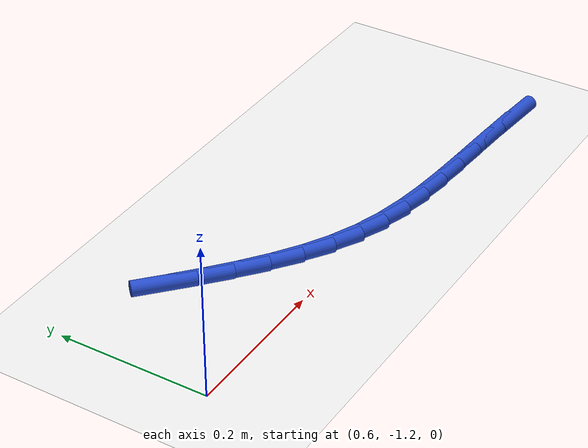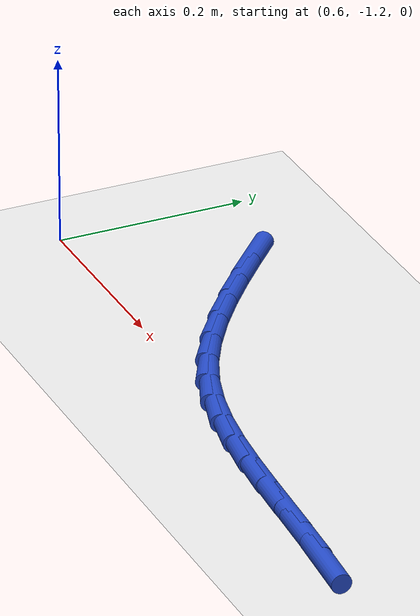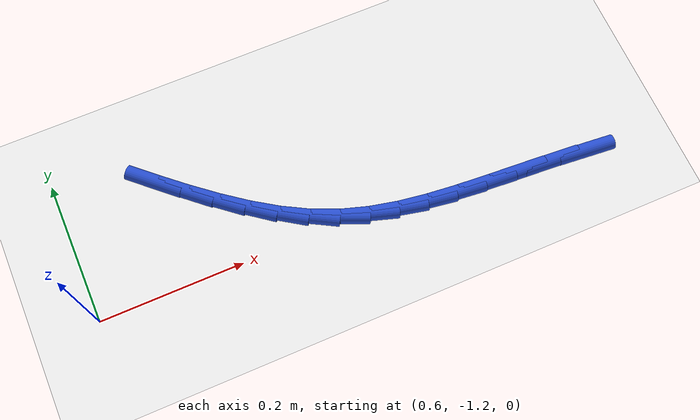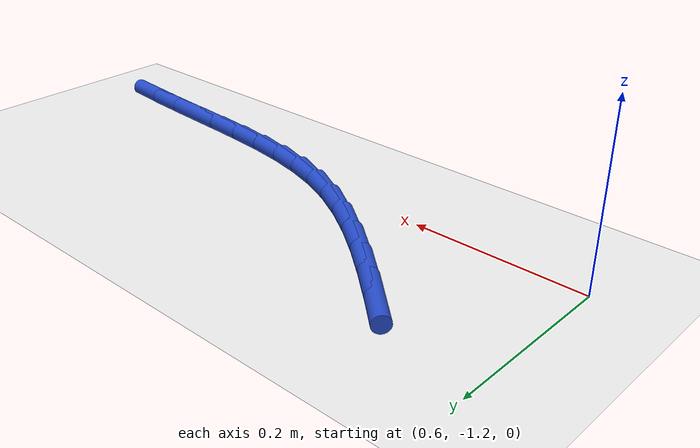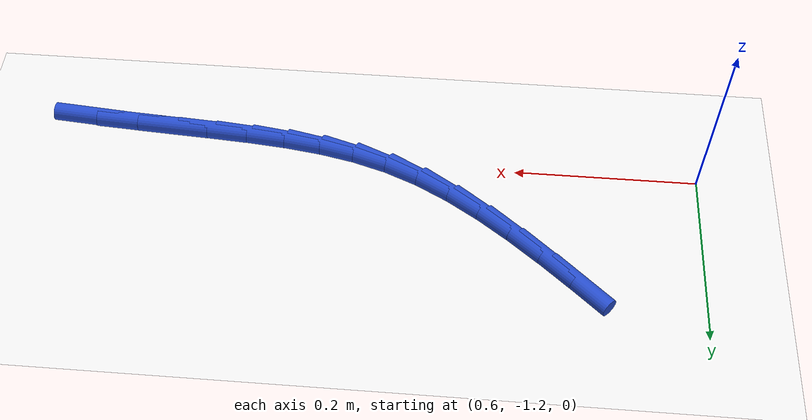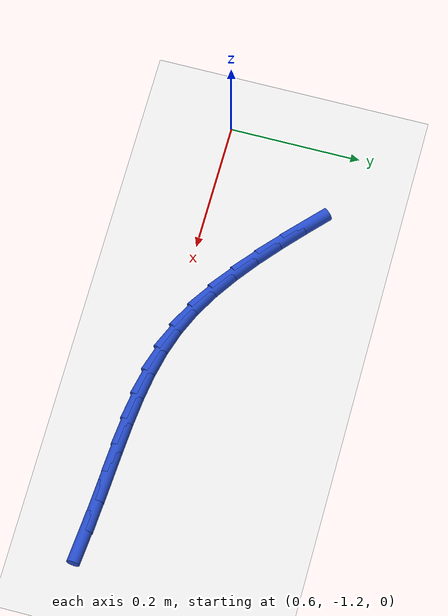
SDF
<sdf version="1.6">
 <world name="default">
  <model name="ground_plane">
   <static>1</static>
   <link name="link">
    <collision name="collision">
     <geometry><plane><normal>0 0 1</normal><size>100 100</size></plane></geometry>
     <surface><friction><ode><mu>100</mu><mu2>50</mu2></ode></friction></surface>
    </collision>
    <visual name="visual">
     <cast_shadows>0</cast_shadows>
     <geometry><plane><normal>0 0 1</normal><size>100 100</size></plane></geometry>
     <material>
      <script><uri>file://media/materials/scripts/gazebo.material</uri><name>Gazebo/WhiteGlow</name></script>
     </material>
    </visual>
   </link>
  </model>
  <model name="line">
   <link name="link_136">
    <pose>1.2841286998038364 -1.2364804240951897 0.01 0 1.57 -0.08490712530675175</pose>
    <collision name="collision">
     <geometry><cylinder><radius>0.01</radius><length>0.08</length></cylinder></geometry>
    </collision>
    <visual name="visual">
     <material>
      <script><name>Gazebo/Blue</name><uri>file://media/materials/scripts/gazebo.material</uri></script>
     </material>
     <geometry><cylinder><radius>0.01</radius><length>0.08</length></cylinder></geometry>
    </visual>
   </link>
   <link name="link_137">
    <pose>1.234058041734694 -1.2322188225901618 0.01 0 1.57 -0.06589791376647325</pose>
    <collision name="collision">
     <geometry><cylinder><radius>0.01</radius><length>0.08</length></cylinder></geometry>
    </collision>
    <visual name="visual">
     <material>
      <script><name>Gazebo/Blue</name><uri>file://media/materials/scripts/gazebo.material</uri></script>
     </material>
     <geometry><cylinder><radius>0.01</radius><length>0.08</length></cylinder></geometry>
    </visual>
   </link>
   <link name="link_138">
    <pose>1.186450401322318 -1.2290770293080326 0.01 0 1.57 -0.06053051956634465</pose>
    <collision name="collision">
     <geometry><cylinder><radius>0.01</radius><length>0.08</length></cylinder></geometry>
    </collision>
    <visual name="visual">
     <material>
      <script><name>Gazebo/Blue</name><uri>file://media/materials/scripts/gazebo.material</uri></script>
     </material>
     <geometry><cylinder><radius>0.01</radius><length>0.08</length></cylinder></geometry>
    </visual>
   </link>
   <link name="link_139">
    <pose>1.14109374131329 -1.226328209117342 0.01 0 1.57 -0.07104469603447536</pose>
    <collision name="collision">
     <geometry><cylinder><radius>0.01</radius><length>0.08</length></cylinder></geometry>
    </collision>
    <visual name="visual">
     <material>
      <script><name>Gazebo/Blue</name><uri>file://media/materials/scripts/gazebo.material</uri></script>
     </material>
     <geometry><cylinder><radius>0.01</radius><length>0.08</length></cylinder></geometry>
    </visual>
   </link>
   <link name="link_140">
    <pose>1.0977760244541914 -1.2232455268866282 0.01 0 1.57 -0.09953259059481355</pose>
    <collision name="collision">
     <geometry><cylinder><radius>0.01</radius><length>0.08</length></cylinder></geometry>
    </collision>
    <visual name="visual">
     <material>
      <script><name>Gazebo/Blue</name><uri>file://media/materials/scripts/gazebo.material</uri></script>
     </material>
     <geometry><cylinder><radius>0.01</radius><length>0.08</length></cylinder></geometry>
    </visual>
   </link>
   <link name="link_141">
    <pose>1.0562852134916048 -1.2191021474844312 0.01 0 1.57 -0.14765165741157626</pose>
    <collision name="collision">
     <geometry><cylinder><radius>0.01</radius><length>0.08</length></cylinder></geometry>
    </collision>
    <visual name="visual">
     <material>
      <script><name>Gazebo/Blue</name><uri>file://media/materials/scripts/gazebo.material</uri></script>
     </material>
     <geometry><cylinder><radius>0.01</radius><length>0.08</length></cylinder></geometry>
    </visual>
   </link>
   <link name="link_142">
    <pose>1.016409271172111 -1.2131712357792899 0.01 0 1.57 -0.2160840326317428</pose>
    <collision name="collision">
     <geometry><cylinder><radius>0.01</radius><length>0.08</length></cylinder></geometry>
    </collision>
    <visual name="visual">
     <material>
      <script><name>Gazebo/Blue</name><uri>file://media/materials/scripts/gazebo.material</uri></script>
     </material>
     <geometry><cylinder><radius>0.01</radius><length>0.08</length></cylinder></geometry>
    </visual>
   </link>
   <link name="link_143">
    <pose>0.9779361602422945 -1.2047259566397432 0.01 0 1.57 -0.303758406248</pose>
    <collision name="collision">
     <geometry><cylinder><radius>0.01</radius><length>0.08</length></cylinder></geometry>
    </collision>
    <visual name="visual">
     <material>
      <script><name>Gazebo/Blue</name><uri>file://media/materials/scripts/gazebo.material</uri></script>
     </material>
     <geometry><cylinder><radius>0.01</radius><length>0.08</length></cylinder></geometry>
    </visual>
   </link>
   <link name="link_144">
    <pose>0.9406538434487355 -1.1930394749343312 0.01 0 1.57 -0.406626187821614</pose>
    <collision name="collision">
     <geometry><cylinder><radius>0.01</radius><length>0.08</length></cylinder></geometry>
    </collision>
    <visual name="visual">
     <material>
      <script><name>Gazebo/Blue</name><uri>file://media/materials/scripts/gazebo.material</uri></script>
     </material>
     <geometry><cylinder><radius>0.01</radius><length>0.08</length></cylinder></geometry>
    </visual>
   </link>
   <link name="link_145">
    <pose>0.9043511295954031 -1.1774065852792128 0.01 0 1.57 -0.5060905683559783</pose>
    <collision name="collision">
     <geometry><cylinder><radius>0.01</radius><length>0.08</length></cylinder></geometry>
    </collision>
    <visual name="visual">
     <material>
      <script><name>Gazebo/Blue</name><uri>file://media/materials/scripts/gazebo.material</uri></script>
     </material>
     <geometry><cylinder><radius>0.01</radius><length>0.08</length></cylinder></geometry>
    </visual>
   </link>
   <link name="link_146">
    <pose>0.8688404197471837 -1.1577252265428073 0.01 0 1.57 -0.5862144771242028</pose>
    <collision name="collision">
     <geometry><cylinder><radius>0.01</radius><length>0.08</length></cylinder></geometry>
    </collision>
    <visual name="visual">
     <material>
      <script><name>Gazebo/Blue</name><uri>file://media/materials/scripts/gazebo.material</uri></script>
     </material>
     <geometry><cylinder><radius>0.01</radius><length>0.08</length></cylinder></geometry>
    </visual>
   </link>
   <link name="link_147">
    <pose>0.8339602610218328 -1.1345617704139188 0.01 0 1.57 -0.6478978410372401</pose>
    <collision name="collision">
     <geometry><cylinder><radius>0.01</radius><length>0.08</length></cylinder></geometry>
    </collision>
    <visual name="visual">
     <material>
      <script><name>Gazebo/Blue</name><uri>file://media/materials/scripts/gazebo.material</uri></script>
     </material>
     <geometry><cylinder><radius>0.01</radius><length>0.08</length></cylinder></geometry>
    </visual>
   </link>
   <link name="link_148">
    <pose>0.7995505590448421 -1.1085173192981947 0.01 0 1.57 -0.6931478454338521</pose>
    <collision name="collision">
     <geometry><cylinder><radius>0.01</radius><length>0.08</length></cylinder></geometry>
    </collision>
    <visual name="visual">
     <material>
      <script><name>Gazebo/Blue</name><uri>file://media/materials/scripts/gazebo.material</uri></script>
     </material>
     <geometry><cylinder><radius>0.01</radius><length>0.08</length></cylinder></geometry>
    </visual>
   </link>
   <link name="link_149">
    <pose>0.7654512194417046 -1.0801929756012842 0.01 0 1.57 -0.7237749302502279</pose>
    <collision name="collision">
     <geometry><cylinder><radius>0.01</radius><length>0.08</length></cylinder></geometry>
    </collision>
    <visual name="visual">
     <material>
      <script><name>Gazebo/Blue</name><uri>file://media/materials/scripts/gazebo.material</uri></script>
     </material>
     <geometry><cylinder><radius>0.01</radius><length>0.08</length></cylinder></geometry>
    </visual>
   </link>
   <link name="link_150">
    <pose>0.7315021478379117 -1.050189841728834 0.01 0 1.57 -0.7411759560568328</pose>
    <collision name="collision">
     <geometry><cylinder><radius>0.01</radius><length>0.08</length></cylinder></geometry>
    </collision>
    <visual name="visual">
     <material>
      <script><name>Gazebo/Blue</name><uri>file://media/materials/scripts/gazebo.material</uri></script>
     </material>
     <geometry><cylinder><radius>0.01</radius><length>0.08</length></cylinder></geometry>
    </visual>
   </link>
  </model>
 </world>
</sdf>
